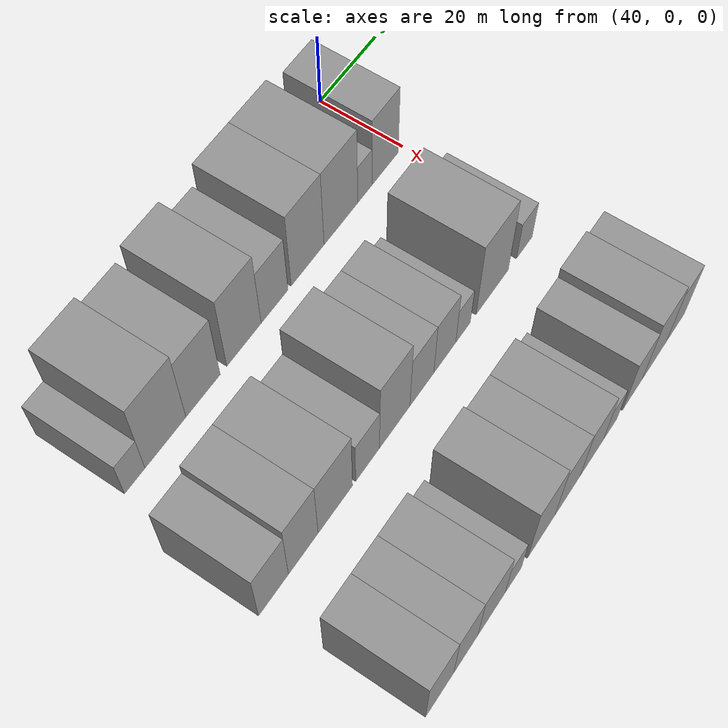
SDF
<sdf version="1.6">
 <world name="default">
  <model name="building_31">
   <static>1</static>
   <pose>50.0000 -85.3227 0 0.000000 0.000000 0.000000</pose>
   <link name="link">
    <pose>0 0 6.00 0 0 0</pose>
    <collision name="collision"><geometry><box><size>20.0000 5.7373 12.0000</size></box></geometry></collision>
    <visual name="visual">
     <cast_shadows>0</cast_shadows>
     <geometry><box><size>20.0000 5.7373 12.0000</size></box></geometry>
     <material>
      <script>
       <uri>model://grey_wall/materials/scripts</uri>
       <uri>model://grey_wall/materials/textures</uri>
       <name>vrc/grey_wall</name>
      </script>
     </material>
    </visual>
   </link>
  </model>
  <model name="building_32">
   <static>1</static>
   <pose>50.0000 -76.5606 0 0.000000 0.000000 0.000000</pose>
   <link name="link">
    <pose>0 0 12.00 0 0 0</pose>
    <collision name="collision"><geometry><box><size>20.0000 11.7869 24.0000</size></box></geometry></collision>
    <visual name="visual">
     <cast_shadows>0</cast_shadows>
     <geometry><box><size>20.0000 11.7869 24.0000</size></box></geometry>
     <material>
      <script>
       <uri>model://grey_wall/materials/scripts</uri>
       <uri>model://grey_wall/materials/textures</uri>
       <name>vrc/grey_wall</name>
      </script>
     </material>
    </visual>
   </link>
  </model>
  <model name="building_33">
   <static>1</static>
   <pose>50.0000 -65.5754 0 0.000000 0.000000 0.000000</pose>
   <link name="link">
    <pose>0 0 10.50 0 0 0</pose>
    <collision name="collision"><geometry><box><size>20.0000 10.1834 21.0000</size></box></geometry></collision>
    <visual name="visual">
     <cast_shadows>0</cast_shadows>
     <geometry><box><size>20.0000 10.1834 21.0000</size></box></geometry>
     <material>
      <script>
       <uri>model://grey_wall/materials/scripts</uri>
       <uri>model://grey_wall/materials/textures</uri>
       <name>vrc/grey_wall</name>
      </script>
     </material>
    </visual>
   </link>
  </model>
  <model name="building_34">
   <static>1</static>
   <pose>50.0000 -53.1653 0 0.000000 0.000000 0.000000</pose>
   <link name="link">
    <pose>0 0 12.00 0 0 0</pose>
    <collision name="collision"><geometry><box><size>20.0000 10.6368 24.0000</size></box></geometry></collision>
    <visual name="visual">
     <cast_shadows>0</cast_shadows>
     <geometry><box><size>20.0000 10.6368 24.0000</size></box></geometry>
     <material>
      <script>
       <uri>model://grey_wall/materials/scripts</uri>
       <uri>model://grey_wall/materials/textures</uri>
       <name>vrc/grey_wall</name>
      </script>
     </material>
    </visual>
   </link>
  </model>
  <model name="building_35">
   <static>1</static>
   <pose>50.0000 -43.5579 0 0.000000 0.000000 0.000000</pose>
   <link name="link">
    <pose>0 0 9.00 0 0 0</pose>
    <collision name="collision"><geometry><box><size>20.0000 8.5779 18.0000</size></box></geometry></collision>
    <visual name="visual">
     <cast_shadows>0</cast_shadows>
     <geometry><box><size>20.0000 8.5779 18.0000</size></box></geometry>
     <material>
      <script>
       <uri>model://grey_wall/materials/scripts</uri>
       <uri>model://grey_wall/materials/textures</uri>
       <name>vrc/grey_wall</name>
      </script>
     </material>
    </visual>
   </link>
  </model>
  <model name="building_36">
   <static>1</static>
   <pose>50.0000 -32.8664 0 0.000000 0.000000 0.000000</pose>
   <link name="link">
    <pose>0 0 12.00 0 0 0</pose>
    <collision name="collision"><geometry><box><size>20.0000 10.8051 24.0000</size></box></geometry></collision>
    <visual name="visual">
     <cast_shadows>0</cast_shadows>
     <geometry><box><size>20.0000 10.8051 24.0000</size></box></geometry>
     <material>
      <script>
       <uri>model://grey_wall/materials/scripts</uri>
       <uri>model://grey_wall/materials/textures</uri>
       <name>vrc/grey_wall</name>
      </script>
     </material>
    </visual>
   </link>
  </model>
  <model name="building_37">
   <static>1</static>
   <pose>50.0000 -21.7463 0 0.000000 0.000000 0.000000</pose>
   <link name="link">
    <pose>0 0 12.00 0 0 0</pose>
    <collision name="collision"><geometry><box><size>20.0000 11.4351 24.0000</size></box></geometry></collision>
    <visual name="visual">
     <cast_shadows>0</cast_shadows>
     <geometry><box><size>20.0000 11.4351 24.0000</size></box></geometry>
     <material>
      <script>
       <uri>model://grey_wall/materials/scripts</uri>
       <uri>model://grey_wall/materials/textures</uri>
       <name>vrc/grey_wall</name>
      </script>
     </material>
    </visual>
   </link>
  </model>
  <model name="building_38">
   <static>1</static>
   <pose>50.0000 -13.5464 0 0.000000 0.000000 0.000000</pose>
   <link name="link">
    <pose>0 0 6.00 0 0 0</pose>
    <collision name="collision"><geometry><box><size>20.0000 4.9647 12.0000</size></box></geometry></collision>
    <visual name="visual">
     <cast_shadows>0</cast_shadows>
     <geometry><box><size>20.0000 4.9647 12.0000</size></box></geometry>
     <material>
      <script>
       <uri>model://grey_wall/materials/scripts</uri>
       <uri>model://grey_wall/materials/textures</uri>
       <name>vrc/grey_wall</name>
      </script>
     </material>
    </visual>
   </link>
  </model>
  <model name="building_39">
   <static>1</static>
   <pose>50.0000 -6.4046 0 0.000000 0.000000 0.000000</pose>
   <link name="link">
    <pose>0 0 10.50 0 0 0</pose>
    <collision name="collision"><geometry><box><size>20.0000 9.3189 21.0000</size></box></geometry></collision>
    <visual name="visual">
     <cast_shadows>0</cast_shadows>
     <geometry><box><size>20.0000 9.3189 21.0000</size></box></geometry>
     <material>
      <script>
       <uri>model://grey_wall/materials/scripts</uri>
       <uri>model://grey_wall/materials/textures</uri>
       <name>vrc/grey_wall</name>
      </script>
     </material>
    </visual>
   </link>
  </model>
  <model name="building_109">
   <static>1</static>
   <pose>82.0000 -88.3826 0 0.000000 0.000000 0.000000</pose>
   <link name="link">
    <pose>0 0 9.00 0 0 0</pose>
    <collision name="collision"><geometry><box><size>20.0000 8.5676 18.0000</size></box></geometry></collision>
    <visual name="visual">
     <cast_shadows>0</cast_shadows>
     <geometry><box><size>20.0000 8.5676 18.0000</size></box></geometry>
     <material>
      <script>
       <uri>model://grey_wall/materials/scripts</uri>
       <uri>model://grey_wall/materials/textures</uri>
       <name>vrc/grey_wall</name>
      </script>
     </material>
    </visual>
   </link>
  </model>
  <model name="building_110">
   <static>1</static>
   <pose>82.0000 -79.7298 0 0.000000 0.000000 0.000000</pose>
   <link name="link">
    <pose>0 0 10.50 0 0 0</pose>
    <collision name="collision"><geometry><box><size>20.0000 8.7380 21.0000</size></box></geometry></collision>
    <visual name="visual">
     <cast_shadows>0</cast_shadows>
     <geometry><box><size>20.0000 8.7380 21.0000</size></box></geometry>
     <material>
      <script>
       <uri>model://grey_wall/materials/scripts</uri>
       <uri>model://grey_wall/materials/textures</uri>
       <name>vrc/grey_wall</name>
      </script>
     </material>
    </visual>
   </link>
  </model>
  <model name="building_111">
   <static>1</static>
   <pose>82.0000 -70.1274 0 0.000000 0.000000 0.000000</pose>
   <link name="link">
    <pose>0 0 10.50 0 0 0</pose>
    <collision name="collision"><geometry><box><size>20.0000 10.4667 21.0000</size></box></geometry></collision>
    <visual name="visual">
     <cast_shadows>0</cast_shadows>
     <geometry><box><size>20.0000 10.4667 21.0000</size></box></geometry>
     <material>
      <script>
       <uri>model://grey_wall/materials/scripts</uri>
       <uri>model://grey_wall/materials/textures</uri>
       <name>vrc/grey_wall</name>
      </script>
     </material>
    </visual>
   </link>
  </model>
  <model name="building_112">
   <static>1</static>
   <pose>82.0000 -60.1732 0 0.000000 0.000000 0.000000</pose>
   <link name="link">
    <pose>0 0 7.50 0 0 0</pose>
    <collision name="collision"><geometry><box><size>20.0000 7.4416 15.0000</size></box></geometry></collision>
    <visual name="visual">
     <cast_shadows>0</cast_shadows>
     <geometry><box><size>20.0000 7.4416 15.0000</size></box></geometry>
     <material>
      <script>
       <uri>model://grey_wall/materials/scripts</uri>
       <uri>model://grey_wall/materials/textures</uri>
       <name>vrc/grey_wall</name>
      </script>
     </material>
    </visual>
   </link>
  </model>
  <model name="building_113">
   <static>1</static>
   <pose>82.0000 -51.5364 0 0.000000 0.000000 0.000000</pose>
   <link name="link">
    <pose>0 0 12.00 0 0 0</pose>
    <collision name="collision"><geometry><box><size>20.0000 9.8321 24.0000</size></box></geometry></collision>
    <visual name="visual">
     <cast_shadows>0</cast_shadows>
     <geometry><box><size>20.0000 9.8321 24.0000</size></box></geometry>
     <material>
      <script>
       <uri>model://grey_wall/materials/scripts</uri>
       <uri>model://grey_wall/materials/textures</uri>
       <name>vrc/grey_wall</name>
      </script>
     </material>
    </visual>
   </link>
  </model>
  <model name="building_114">
   <static>1</static>
   <pose>82.0000 -42.6458 0 0.000000 0.000000 0.000000</pose>
   <link name="link">
    <pose>0 0 9.00 0 0 0</pose>
    <collision name="collision"><geometry><box><size>20.0000 7.9490 18.0000</size></box></geometry></collision>
    <visual name="visual">
     <cast_shadows>0</cast_shadows>
     <geometry><box><size>20.0000 7.9490 18.0000</size></box></geometry>
     <material>
      <script>
       <uri>model://grey_wall/materials/scripts</uri>
       <uri>model://grey_wall/materials/textures</uri>
       <name>vrc/grey_wall</name>
      </script>
     </material>
    </visual>
   </link>
  </model>
  <model name="building_115">
   <static>1</static>
   <pose>82.0000 -34.9589 0 0.000000 0.000000 0.000000</pose>
   <link name="link">
    <pose>0 0 9.00 0 0 0</pose>
    <collision name="collision"><geometry><box><size>20.0000 7.4248 18.0000</size></box></geometry></collision>
    <visual name="visual">
     <cast_shadows>0</cast_shadows>
     <geometry><box><size>20.0000 7.4248 18.0000</size></box></geometry>
     <material>
      <script>
       <uri>model://grey_wall/materials/scripts</uri>
       <uri>model://grey_wall/materials/textures</uri>
       <name>vrc/grey_wall</name>
      </script>
     </material>
    </visual>
   </link>
  </model>
  <model name="building_116">
   <static>1</static>
   <pose>82.0000 -28.6866 0 0.000000 0.000000 0.000000</pose>
   <link name="link">
    <pose>0 0 6.00 0 0 0</pose>
    <collision name="collision"><geometry><box><size>20.0000 5.1197 12.0000</size></box></geometry></collision>
    <visual name="visual">
     <cast_shadows>0</cast_shadows>
     <geometry><box><size>20.0000 5.1197 12.0000</size></box></geometry>
     <material>
      <script>
       <uri>model://grey_wall/materials/scripts</uri>
       <uri>model://grey_wall/materials/textures</uri>
       <name>vrc/grey_wall</name>
      </script>
     </material>
    </visual>
   </link>
  </model>
  <model name="building_117">
   <static>1</static>
   <pose>82.0000 -18.3527 0 0.000000 0.000000 0.000000</pose>
   <link name="link">
    <pose>0 0 12.00 0 0 0</pose>
    <collision name="collision"><geometry><box><size>20.0000 11.5481 24.0000</size></box></geometry></collision>
    <visual name="visual">
     <cast_shadows>0</cast_shadows>
     <geometry><box><size>20.0000 11.5481 24.0000</size></box></geometry>
     <material>
      <script>
       <uri>model://grey_wall/materials/scripts</uri>
       <uri>model://grey_wall/materials/textures</uri>
       <name>vrc/grey_wall</name>
      </script>
     </material>
    </visual>
   </link>
  </model>
  <model name="building_118">
   <static>1</static>
   <pose>82.0000 -6.6771 0 0.000000 0.000000 0.000000</pose>
   <link name="link">
    <pose>0 0 6.00 0 0 0</pose>
    <collision name="collision"><geometry><box><size>20.0000 5.8031 12.0000</size></box></geometry></collision>
    <visual name="visual">
     <cast_shadows>0</cast_shadows>
     <geometry><box><size>20.0000 5.8031 12.0000</size></box></geometry>
     <material>
      <script>
       <uri>model://grey_wall/materials/scripts</uri>
       <uri>model://grey_wall/materials/textures</uri>
       <name>vrc/grey_wall</name>
      </script>
     </material>
    </visual>
   </link>
  </model>
  <model name="building_188">
   <static>1</static>
   <pose>114.0000 -86.8810 0 0.000000 0.000000 0.000000</pose>
   <link name="link">
    <pose>0 0 9.00 0 0 0</pose>
    <collision name="collision"><geometry><box><size>20.0000 8.4590 18.0000</size></box></geometry></collision>
    <visual name="visual">
     <cast_shadows>0</cast_shadows>
     <geometry><box><size>20.0000 8.4590 18.0000</size></box></geometry>
     <material>
      <script>
       <uri>model://grey_wall/materials/scripts</uri>
       <uri>model://grey_wall/materials/textures</uri>
       <name>vrc/grey_wall</name>
      </script>
     </material>
    </visual>
   </link>
  </model>
  <model name="building_189">
   <static>1</static>
   <pose>114.0000 -78.9339 0 0.000000 0.000000 0.000000</pose>
   <link name="link">
    <pose>0 0 9.00 0 0 0</pose>
    <collision name="collision"><geometry><box><size>20.0000 7.4352 18.0000</size></box></geometry></collision>
    <visual name="visual">
     <cast_shadows>0</cast_shadows>
     <geometry><box><size>20.0000 7.4352 18.0000</size></box></geometry>
     <material>
      <script>
       <uri>model://grey_wall/materials/scripts</uri>
       <uri>model://grey_wall/materials/textures</uri>
       <name>vrc/grey_wall</name>
      </script>
     </material>
    </visual>
   </link>
  </model>
  <model name="building_190">
   <static>1</static>
   <pose>114.0000 -70.9005 0 0.000000 0.000000 0.000000</pose>
   <link name="link">
    <pose>0 0 9.00 0 0 0</pose>
    <collision name="collision"><geometry><box><size>20.0000 8.6316 18.0000</size></box></geometry></collision>
    <visual name="visual">
     <cast_shadows>0</cast_shadows>
     <geometry><box><size>20.0000 8.6316 18.0000</size></box></geometry>
     <material>
      <script>
       <uri>model://grey_wall/materials/scripts</uri>
       <uri>model://grey_wall/materials/textures</uri>
       <name>vrc/grey_wall</name>
      </script>
     </material>
    </visual>
   </link>
  </model>
  <model name="building_191">
   <static>1</static>
   <pose>114.0000 -63.8808 0 0.000000 0.000000 0.000000</pose>
   <link name="link">
    <pose>0 0 6.00 0 0 0</pose>
    <collision name="collision"><geometry><box><size>20.0000 5.4078 12.0000</size></box></geometry></collision>
    <visual name="visual">
     <cast_shadows>0</cast_shadows>
     <geometry><box><size>20.0000 5.4078 12.0000</size></box></geometry>
     <material>
      <script>
       <uri>model://grey_wall/materials/scripts</uri>
       <uri>model://grey_wall/materials/textures</uri>
       <name>vrc/grey_wall</name>
      </script>
     </material>
    </visual>
   </link>
  </model>
  <model name="building_192">
   <static>1</static>
   <pose>114.0000 -54.6046 0 0.000000 0.000000 0.000000</pose>
   <link name="link">
    <pose>0 0 10.50 0 0 0</pose>
    <collision name="collision"><geometry><box><size>20.0000 9.1446 21.0000</size></box></geometry></collision>
    <visual name="visual">
     <cast_shadows>0</cast_shadows>
     <geometry><box><size>20.0000 9.1446 21.0000</size></box></geometry>
     <material>
      <script>
       <uri>model://grey_wall/materials/scripts</uri>
       <uri>model://grey_wall/materials/textures</uri>
       <name>vrc/grey_wall</name>
      </script>
     </material>
    </visual>
   </link>
  </model>
  <model name="building_193">
   <static>1</static>
   <pose>114.0000 -45.7023 0 0.000000 0.000000 0.000000</pose>
   <link name="link">
    <pose>0 0 9.00 0 0 0</pose>
    <collision name="collision"><geometry><box><size>20.0000 8.6599 18.0000</size></box></geometry></collision>
    <visual name="visual">
     <cast_shadows>0</cast_shadows>
     <geometry><box><size>20.0000 8.6599 18.0000</size></box></geometry>
     <material>
      <script>
       <uri>model://grey_wall/materials/scripts</uri>
       <uri>model://grey_wall/materials/textures</uri>
       <name>vrc/grey_wall</name>
      </script>
     </material>
    </visual>
   </link>
  </model>
  <model name="building_194">
   <static>1</static>
   <pose>114.0000 -37.2590 0 0.000000 0.000000 0.000000</pose>
   <link name="link">
    <pose>0 0 9.00 0 0 0</pose>
    <collision name="collision"><geometry><box><size>20.0000 8.2268 18.0000</size></box></geometry></collision>
    <visual name="visual">
     <cast_shadows>0</cast_shadows>
     <geometry><box><size>20.0000 8.2268 18.0000</size></box></geometry>
     <material>
      <script>
       <uri>model://grey_wall/materials/scripts</uri>
       <uri>model://grey_wall/materials/textures</uri>
       <name>vrc/grey_wall</name>
      </script>
     </material>
    </visual>
   </link>
  </model>
  <model name="building_195">
   <static>1</static>
   <pose>114.0000 -30.6104 0 0.000000 0.000000 0.000000</pose>
   <link name="link">
    <pose>0 0 6.00 0 0 0</pose>
    <collision name="collision"><geometry><box><size>20.0000 5.0704 12.0000</size></box></geometry></collision>
    <visual name="visual">
     <cast_shadows>0</cast_shadows>
     <geometry><box><size>20.0000 5.0704 12.0000</size></box></geometry>
     <material>
      <script>
       <uri>model://grey_wall/materials/scripts</uri>
       <uri>model://grey_wall/materials/textures</uri>
       <name>vrc/grey_wall</name>
      </script>
     </material>
    </visual>
   </link>
  </model>
  <model name="building_196">
   <static>1</static>
   <pose>114.0000 -22.4358 0 0.000000 0.000000 0.000000</pose>
   <link name="link">
    <pose>0 0 9.00 0 0 0</pose>
    <collision name="collision"><geometry><box><size>20.0000 7.2788 18.0000</size></box></geometry></collision>
    <visual name="visual">
     <cast_shadows>0</cast_shadows>
     <geometry><box><size>20.0000 7.2788 18.0000</size></box></geometry>
     <material>
      <script>
       <uri>model://grey_wall/materials/scripts</uri>
       <uri>model://grey_wall/materials/textures</uri>
       <name>vrc/grey_wall</name>
      </script>
     </material>
    </visual>
   </link>
  </model>
  <model name="building_197">
   <static>1</static>
   <pose>114.0000 -14.2653 0 0.000000 0.000000 0.000000</pose>
   <link name="link">
    <pose>0 0 10.50 0 0 0</pose>
    <collision name="collision"><geometry><box><size>20.0000 9.0622 21.0000</size></box></geometry></collision>
    <visual name="visual">
     <cast_shadows>0</cast_shadows>
     <geometry><box><size>20.0000 9.0622 21.0000</size></box></geometry>
     <material>
      <script>
       <uri>model://grey_wall/materials/scripts</uri>
       <uri>model://grey_wall/materials/textures</uri>
       <name>vrc/grey_wall</name>
      </script>
     </material>
    </visual>
   </link>
  </model>
  <model name="building_198">
   <static>1</static>
   <pose>114.0000 -6.1165 0 0.000000 0.000000 0.000000</pose>
   <link name="link">
    <pose>0 0 9.00 0 0 0</pose>
    <collision name="collision"><geometry><box><size>20.0000 7.2354 18.0000</size></box></geometry></collision>
    <visual name="visual">
     <cast_shadows>0</cast_shadows>
     <geometry><box><size>20.0000 7.2354 18.0000</size></box></geometry>
     <material>
      <script>
       <uri>model://grey_wall/materials/scripts</uri>
       <uri>model://grey_wall/materials/textures</uri>
       <name>vrc/grey_wall</name>
      </script>
     </material>
    </visual>
   </link>
  </model>
 </world>
</sdf>
